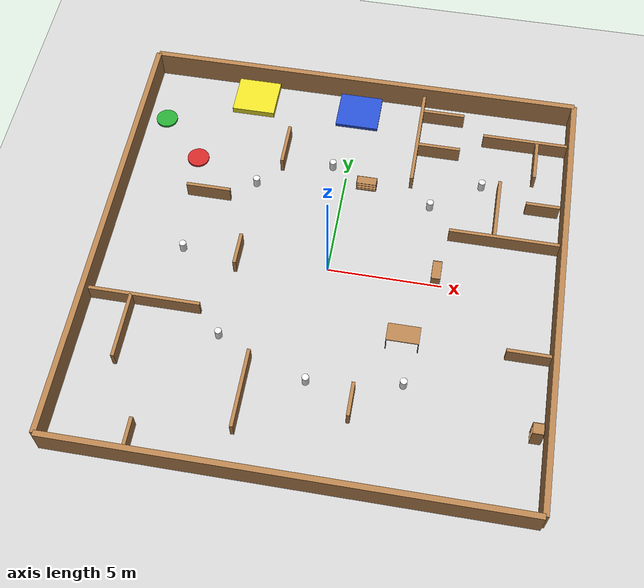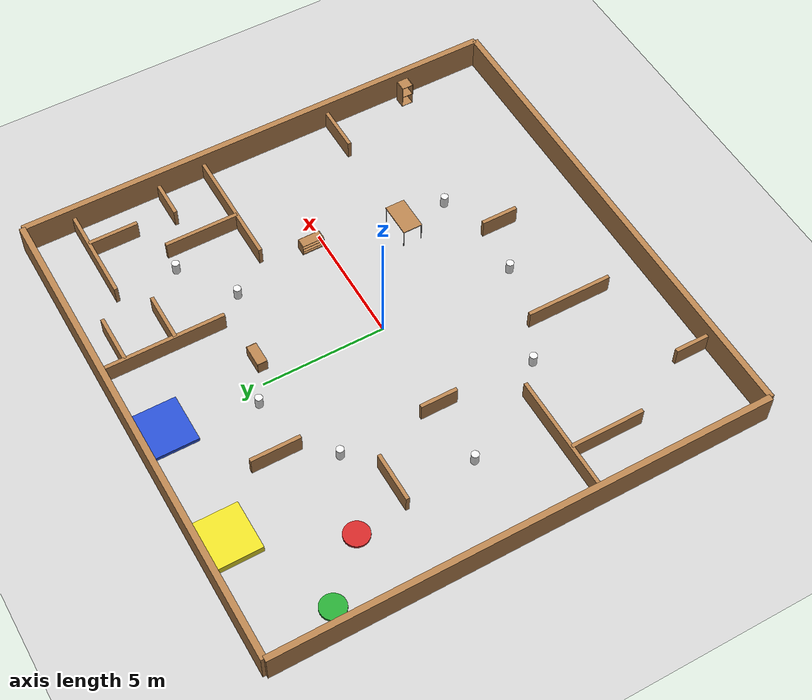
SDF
<sdf version="1.7">
 <world name="default">
  <plugin name="gazebo_ros_state" filename="libgazebo_ros_state.so">
   <ros><namespace>/test</namespace><argument>model_states:=model_states_demo</argument></ros>
   <update_rate>1.0</update_rate>
  </plugin>
  <model name="ground_plane">
   <static>1</static>
   <link name="link">
    <collision name="collision">
     <geometry><plane><normal>0 0 1</normal><size>100 100</size></plane></geometry>
     <surface>
      <contact><collide_bitmask>65535</collide_bitmask></contact>
      <friction><ode><mu>100</mu><mu2>50</mu2></ode></friction>
     </surface>
    </collision>
    <visual name="visual">
     <cast_shadows>0</cast_shadows>
     <geometry><plane><normal>0 0 1</normal><size>100 100</size></plane></geometry>
     <material>
      <script><uri>file://media/materials/scripts/gazebo.material</uri><name>Gazebo/Grey</name></script>
     </material>
    </visual>
   </link>
  </model>
  <light name="sun" type="directional">
   <pose>0 0 10 0 -0 0</pose>
   <diffuse>0.8 0.8 0.8 1</diffuse>
   <specular>0.2 0.2 0.2 1</specular>
   <attenuation>
    <range>1000</range>
    <constant>0.9</constant>
    <linear>0.01</linear>
    <quadratic>0.001</quadratic>
   </attenuation>
   <direction>-0.5 0.1 -0.9</direction>
   <spot><inner_angle>0</inner_angle><outer_angle>0</outer_angle><falloff>0</falloff></spot>
  </light>
  <scene><shadows>0</shadows><ambient>0.4 0.4 0.4 1</ambient><background>0.7 0.7 0.7 1</background></scene>
  <physics type="ode">
   <real_time_update_rate>1000</real_time_update_rate>
   <max_step_size>0.001</max_step_size>
   <real_time_factor>1</real_time_factor>
   <ode>
    <solver>
     <type>quick</type>
     <iters>150</iters>
     <precon_iters>0</precon_iters>
     <sor>1.4</sor>
     <use_dynamic_moi_rescaling>1</use_dynamic_moi_rescaling>
    </solver>
    <constraints>
     <cfm>1e-05</cfm>
     <erp>0.2</erp>
     <contact_max_correcting_vel>2000</contact_max_correcting_vel>
     <contact_surface_layer>0.01</contact_surface_layer>
    </constraints>
   </ode>
  </physics>
  <model name="room_square">
   <link name="Wall_1">
    <collision name="Wall_1_Collision">
     <geometry><box><size>20 0.25 2</size></box></geometry>
     <pose>0 0 0.25 0 -0 0</pose>
    </collision>
    <visual name="Wall_1_Visual">
     <pose>0 0 0.25 0 -0 0</pose>
     <geometry><box><size>20 0.25 2</size></box></geometry>
     <material>
      <script><uri>file://media/materials/scripts/gazebo.material</uri><name>Gazebo/Wood</name></script>
      <ambient>1 1 1 1</ambient>
     </material>
    </visual>
    <pose>-10 0 0 0 -0 1.5708</pose>
   </link>
   <link name="Wall_2">
    <collision name="Wall_2_Collision">
     <geometry><box><size>20 0.25 2</size></box></geometry>
     <pose>0 0 0.25 0 -0 0</pose>
    </collision>
    <visual name="Wall_2_Visual">
     <pose>0 0 0.25 0 -0 0</pose>
     <geometry><box><size>20 0.25 2</size></box></geometry>
     <material>
      <script><uri>file://media/materials/scripts/gazebo.material</uri><name>Gazebo/Wood</name></script>
      <ambient>1 1 1 1</ambient>
     </material>
    </visual>
    <pose>0 10 0 0 -0 0</pose>
   </link>
   <link name="Wall_3">
    <collision name="Wall_3_Collision">
     <geometry><box><size>20 0.25 2</size></box></geometry>
     <pose>0 0 0.25 0 -0 0</pose>
    </collision>
    <visual name="Wall_3_Visual">
     <pose>0 0 0.25 0 -0 0</pose>
     <geometry><box><size>20 0.25 2</size></box></geometry>
     <material>
      <script><uri>file://media/materials/scripts/gazebo.material</uri><name>Gazebo/Wood</name></script>
      <ambient>1 1 1 1</ambient>
     </material>
    </visual>
    <pose>10 0 0 0 0 -1.5708</pose>
   </link>
   <link name="Wall_4">
    <collision name="Wall_4_Collision">
     <geometry><box><size>20 0.25 2</size></box></geometry>
     <pose>0 0 0.25 0 -0 0</pose>
    </collision>
    <visual name="Wall_4_Visual">
     <pose>0 0 0.25 0 -0 0</pose>
     <geometry><box><size>20 0.25 2</size></box></geometry>
     <material>
      <script><uri>file://media/materials/scripts/gazebo.material</uri><name>Gazebo/Wood</name></script>
      <ambient>1 1 1 1</ambient>
     </material>
    </visual>
    <pose>0 -10 0 0 -0 3.14159</pose>
   </link>
   <static>1</static>
  </model>
  <model name="inner_walls">
   <link name="inner_wall_1_1">
    <collision name="inner_wall_1_1_collision">
     <geometry><box><size>5 0.15 1</size></box></geometry>
     <pose>0 0 0.25 0 -0 0</pose>
    </collision>
    <visual name="inner_wall_1_1_visual">
     <pose>0 0 0.25 0 -0 0</pose>
     <geometry><box><size>5 0.15 1</size></box></geometry>
     <material>
      <script><uri>file://media/materials/scripts/gazebo.material</uri><name>Gazebo/Wood</name></script>
      <ambient>1 1 1 1</ambient>
     </material>
    </visual>
    <pose>-7.5 -3 0 0 -0 0</pose>
   </link>
   <link name="inner_wall_right_down_h">
    <collision name="inner_wall_right_down_h_collision">
     <geometry><box><size>3 0.15 1</size></box></geometry>
     <pose>0 0 0.25 0 -0 0</pose>
    </collision>
    <visual name="inner_wall_right_down_h_visual">
     <pose>0 0 0.25 0 -0 0</pose>
     <geometry><box><size>3 0.15 1</size></box></geometry>
     <material>
      <script><uri>file://media/materials/scripts/gazebo.material</uri><name>Gazebo/Wood</name></script>
      <ambient>1 1 1 1</ambient>
     </material>
    </visual>
    <pose>-8 -4.5 0 0 0 -1.5708</pose>
   </link>
   <link name="inner_wall_1_2">
    <collision name="inner_wall_1_2_collision">
     <geometry><box><size>3 0.15 1</size></box></geometry>
     <pose>0 0 0.25 0 -0 0</pose>
    </collision>
    <visual name="inner_wall_1_2_visual">
     <pose>0 0 0.25 0 -0 0</pose>
     <geometry><box><size>3.5 0.15 1</size></box></geometry>
     <material>
      <script><uri>file://media/materials/scripts/gazebo.material</uri><name>Gazebo/Wood</name></script>
      <ambient>1 1 1 1</ambient>
     </material>
    </visual>
    <pose>-2.5 -6.5 0 0 0 -1.5708</pose>
   </link>
   <link name="inner_wall_3">
    <collision name="inner_wall_3_collision">
     <geometry><box><size>1.5 0.15 1</size></box></geometry>
     <pose>0 0 0.25 0 -0 0</pose>
    </collision>
    <visual name="inner_wall_3_visual">
     <pose>0 0 0.25 0 -0 0</pose>
     <geometry><box><size>1.5 0.15 1</size></box></geometry>
     <material>
      <script><uri>file://media/materials/scripts/gazebo.material</uri><name>Gazebo/Wood</name></script>
      <ambient>1 1 1 1</ambient>
     </material>
    </visual>
    <pose>2 -6.25 0 0 0 -1.5708</pose>
   </link>
   <link name="inner_wall_9">
    <collision name="inner_wall_9_collision">
     <geometry><box><size>2 0.15 1</size></box></geometry>
     <pose>0 0 0.25 0 -0 0</pose>
    </collision>
    <visual name="inner_wall_9_visual">
     <pose>0 0 0.25 0 -0 0</pose>
     <geometry><box><size>2 0.15 1</size></box></geometry>
     <material>
      <script><uri>file://media/materials/scripts/gazebo.material</uri><name>Gazebo/Wood</name></script>
      <ambient>1 1 1 1</ambient>
     </material>
    </visual>
    <pose>9 -3 0 0 -0 0</pose>
   </link>
   <link name="inner_wall_4">
    <collision name="inner_wall_4_collision">
     <geometry><box><size>5 0.15 1</size></box></geometry>
     <pose>0 0 0.25 0 -0 0</pose>
    </collision>
    <visual name="inner_wall_4_visual">
     <pose>0 0 0.25 0 -0 0</pose>
     <geometry><box><size>5 0.15 1</size></box></geometry>
     <material>
      <script><uri>file://media/materials/scripts/gazebo.material</uri><name>Gazebo/Wood</name></script>
      <ambient>1 1 1 1</ambient>
     </material>
    </visual>
    <pose>3 7.5 0 0 0 -1.5708</pose>
   </link>
   <link name="inner_wall_5">
    <collision name="inner_wall_5_collision">
     <geometry><box><size>5 0.15 1</size></box></geometry>
     <pose>0 0 0.25 0 -0 0</pose>
    </collision>
    <visual name="inner_wall_5_visual">
     <pose>0 0 0.25 0 -0 0</pose>
     <geometry><box><size>5 0.15 1</size></box></geometry>
     <material>
      <script><uri>file://media/materials/scripts/gazebo.material</uri><name>Gazebo/Wood</name></script>
      <ambient>1 1 1 1</ambient>
     </material>
    </visual>
    <pose>7.5 2.5 0 0 -0 0</pose>
   </link>
   <link name="inner_wall_10">
    <collision name="inner_wall_10_collision">
     <geometry><box><size>1.5 0.15 1</size></box></geometry>
     <pose>0 0 0.25 0 -0 0</pose>
    </collision>
    <visual name="inner_wall_10_visual">
     <pose>0 0 0.25 0 -0 0</pose>
     <geometry><box><size>1.5 0.15 1</size></box></geometry>
     <material>
      <script><uri>file://media/materials/scripts/gazebo.material</uri><name>Gazebo/Wood</name></script>
      <ambient>1 1 1 1</ambient>
     </material>
    </visual>
    <pose>-6.5 -9.25 0 0 0 -1.5708</pose>
   </link>
   <link name="inner_wall_6">
    <collision name="inner_wall_6_collision">
     <geometry><box><size>1 0.15 1</size></box></geometry>
     <pose>0 0 0.25 0 -0 0</pose>
    </collision>
    <visual name="inner_wall_6_visual">
     <pose>0 0 0.25 0 -0 0</pose>
     <geometry><box><size>2 0.15 1</size></box></geometry>
     <material>
      <script><uri>file://media/materials/scripts/gazebo.material</uri><name>Gazebo/Wood</name></script>
      <ambient>1 1 1 1</ambient>
     </material>
    </visual>
    <pose>-6 3 0 0 -0 0</pose>
   </link>
   <link name="inner_wall_7">
    <collision name="inner_wall_7_collision">
     <geometry><box><size>2 0.15 1</size></box></geometry>
     <pose>0 0 0.25 0 -0 0</pose>
    </collision>
    <visual name="inner_wall_7_visual">
     <pose>0 0 0.25 0 -0 0</pose>
     <geometry><box><size>2 0.15 1</size></box></geometry>
     <material>
      <script><uri>file://media/materials/scripts/gazebo.material</uri><name>Gazebo/Wood</name></script>
      <ambient>1 1 1 1</ambient>
     </material>
    </visual>
    <pose>-3 6 0 0 0 -1.5708</pose>
   </link>
   <link name="inner_wall_8">
    <collision name="inner_wall_8_collision">
     <geometry><box><size>1.5 0.15 1</size></box></geometry>
     <pose>0 0 0.25 0 -0 0</pose>
    </collision>
    <visual name="inner_wall_8_visual">
     <pose>0 0 0.25 0 -0 0</pose>
     <geometry><box><size>1.5 0.15 1</size></box></geometry>
     <material>
      <script><uri>file://media/materials/scripts/gazebo.material</uri><name>Gazebo/Wood</name></script>
      <ambient>1 1 1 1</ambient>
     </material>
    </visual>
    <pose>-4 0 0 0 0 -1.5708</pose>
   </link>
   <link name="inner_wall_11">
    <collision name="inner_wall_11_collision">
     <geometry><box><size>3 0.15 1</size></box></geometry>
     <pose>0 0 0.25 0 -0 0</pose>
    </collision>
    <visual name="inner_wall_11_visual">
     <pose>0 0 0.25 0 -0 0</pose>
     <geometry><box><size>3 0.15 1</size></box></geometry>
     <material>
      <script><uri>file://media/materials/scripts/gazebo.material</uri><name>Gazebo/Wood</name></script>
      <ambient>1 1 1 1</ambient>
     </material>
    </visual>
    <pose>7 4 0 0 0 -1.5708</pose>
   </link>
   <link name="inner_wall_12">
    <collision name="inner_wall_12_collision">
     <geometry><box><size>4 0.15 1</size></box></geometry>
     <pose>0 0 0.25 0 -0 0</pose>
    </collision>
    <visual name="inner_wall_12_visual">
     <pose>0 0 0.25 0 -0 0</pose>
     <geometry><box><size>4 0.15 1</size></box></geometry>
     <material>
      <script><uri>file://media/materials/scripts/gazebo.material</uri><name>Gazebo/Wood</name></script>
      <ambient>1 1 1 1</ambient>
     </material>
    </visual>
    <pose>8 8 0 0 -0 0</pose>
   </link>
   <link name="inner_wall_13">
    <collision name="inner_wall_13_collision">
     <geometry><box><size>2 0.15 1</size></box></geometry>
     <pose>0 0 0.25 0 -0 0</pose>
    </collision>
    <visual name="inner_wall_13_visual">
     <pose>0 0 0.25 0 -0 0</pose>
     <geometry><box><size>2 0.15 1</size></box></geometry>
     <material>
      <script><uri>file://media/materials/scripts/gazebo.material</uri><name>Gazebo/Wood</name></script>
      <ambient>1 1 1 1</ambient>
     </material>
    </visual>
    <pose>4 9 0 0 -0 0</pose>
   </link>
   <link name="inner_wall_14">
    <collision name="inner_wall_14_collision">
     <geometry><box><size>1.5 0.15 1</size></box></geometry>
     <pose>0 0 0.25 0 -0 0</pose>
    </collision>
    <visual name="inner_wall_14_visual">
     <pose>0 0 0.25 0 -0 0</pose>
     <geometry><box><size>1.5 0.15 1</size></box></geometry>
     <material>
      <script><uri>file://media/materials/scripts/gazebo.material</uri><name>Gazebo/Wood</name></script>
      <ambient>1 1 1 1</ambient>
     </material>
    </visual>
    <pose>9 4.5 0 0 -0 0</pose>
   </link>
   <link name="inner_wall_15">
    <collision name="inner_wall_15_collision">
     <geometry><box><size>2 0.15 1</size></box></geometry>
     <pose>0 0 0.25 0 -0 0</pose>
    </collision>
    <visual name="inner_wall_15_visual">
     <pose>0 0 0.25 0 -0 0</pose>
     <geometry><box><size>2 0.15 1</size></box></geometry>
     <material>
      <script><uri>file://media/materials/scripts/gazebo.material</uri><name>Gazebo/Wood</name></script>
      <ambient>1 1 1 1</ambient>
     </material>
    </visual>
    <pose>8.5 7 0 0 0 -1.5708</pose>
   </link>
   <link name="inner_wall_16">
    <collision name="inner_wall_16_collision">
     <geometry><box><size>2 0.15 1</size></box></geometry>
     <pose>0 0 0.25 0 -0 0</pose>
    </collision>
    <visual name="inner_wall_16_visual">
     <pose>0 0 0.25 0 -0 0</pose>
     <geometry><box><size>2 0.15 1</size></box></geometry>
     <material>
      <script><uri>file://media/materials/scripts/gazebo.material</uri><name>Gazebo/Wood</name></script>
      <ambient>1 1 1 1</ambient>
     </material>
    </visual>
    <pose>4 7 0 0 -0 0</pose>
   </link>
   <static>1</static>
  </model>
  <model name="obstacles">
   <link name="obstacle_1">
    <collision name="obstacle_1_collision">
     <pose>0 0 0.25 0 -0 0</pose>
     <geometry><cylinder><radius>0.15</radius><length>0.5</length></cylinder></geometry>
    </collision>
    <visual name="obstacle_1_visual">
     <pose>0 0 0.25 0 -0 0</pose>
     <geometry><cylinder><radius>0.15</radius><length>0.5</length></cylinder></geometry>
     <material>
      <script><uri>file://media/materials/scripts/gazebo.material</uri><name>Gazebo/White</name></script>
     </material>
    </visual>
    <pose>-4 -4 0 0 -0 0</pose>
   </link>
   <link name="obstacle_2">
    <collision name="obstacle_2_collision">
     <pose>0 0 0.25 0 -0 0</pose>
     <geometry><cylinder><radius>0.15</radius><length>0.5</length></cylinder></geometry>
    </collision>
    <visual name="obstacle_2_visual">
     <pose>0 0 0.25 0 -0 0</pose>
     <geometry><cylinder><radius>0.15</radius><length>0.5</length></cylinder></geometry>
     <material>
      <script><uri>file://media/materials/scripts/gazebo.material</uri><name>Gazebo/White</name></script>
     </material>
    </visual>
    <pose>-4 4 0 0 -0 0</pose>
   </link>
   <link name="obstacle_3">
    <collision name="obstacle_3_collision">
     <pose>0 0 0.25 0 -0 0</pose>
     <geometry><cylinder><radius>0.15</radius><length>0.5</length></cylinder></geometry>
    </collision>
    <visual name="obstacle_3_visual">
     <pose>0 0 0.25 0 -0 0</pose>
     <geometry><cylinder><radius>0.15</radius><length>0.5</length></cylinder></geometry>
     <material>
      <script><uri>file://media/materials/scripts/gazebo.material</uri><name>Gazebo/White</name></script>
     </material>
    </visual>
    <pose>4 -5 0 0 -0 0</pose>
   </link>
   <link name="obstacle_4">
    <collision name="obstacle_4_collision">
     <pose>0 0 0.25 0 -0 0</pose>
     <geometry><cylinder><radius>0.15</radius><length>0.5</length></cylinder></geometry>
    </collision>
    <visual name="obstacle_4_visual">
     <pose>0 0 0.25 0 -0 0</pose>
     <geometry><cylinder><radius>0.15</radius><length>0.5</length></cylinder></geometry>
     <material>
      <script><uri>file://media/materials/scripts/gazebo.material</uri><name>Gazebo/White</name></script>
     </material>
    </visual>
    <pose>4 4 0 0 -0 0</pose>
   </link>
   <link name="obstacle_5">
    <collision name="obstacle_5_collision">
     <pose>0 0 0.25 0 -0 0</pose>
     <geometry><cylinder><radius>0.15</radius><length>0.5</length></cylinder></geometry>
    </collision>
    <visual name="obstacle_5_visual">
     <pose>0 0 0.25 0 -0 0</pose>
     <geometry><cylinder><radius>0.15</radius><length>0.5</length></cylinder></geometry>
     <material>
      <script><uri>file://media/materials/scripts/gazebo.material</uri><name>Gazebo/White</name></script>
     </material>
    </visual>
    <pose>-6.5 0 0 0 -0 0</pose>
   </link>
   <link name="obstacle_6">
    <collision name="obstacle_6_collision">
     <pose>0 0 0.25 0 -0 0</pose>
     <geometry><cylinder><radius>0.15</radius><length>0.5</length></cylinder></geometry>
    </collision>
    <visual name="obstacle_6_visual">
     <pose>0 0 0.25 0 -0 0</pose>
     <geometry><cylinder><radius>0.15</radius><length>0.5</length></cylinder></geometry>
     <material>
      <script><uri>file://media/materials/scripts/gazebo.material</uri><name>Gazebo/White</name></script>
     </material>
    </visual>
    <pose>0 -5.5 0 0 -0 0</pose>
   </link>
   <link name="obstacle_7">
    <collision name="obstacle_7_collision">
     <pose>0 0 0.25 0 -0 0</pose>
     <geometry><cylinder><radius>0.15</radius><length>0.5</length></cylinder></geometry>
    </collision>
    <visual name="obstacle_7_visual">
     <pose>0 0 0.25 0 -0 0</pose>
     <geometry><cylinder><radius>0.15</radius><length>0.5</length></cylinder></geometry>
     <material>
      <script><uri>file://media/materials/scripts/gazebo.material</uri><name>Gazebo/White</name></script>
     </material>
    </visual>
    <pose>6.2 5.5 0 0 -0 0</pose>
   </link>
   <link name="obstacle_8">
    <collision name="obstacle_8_collision">
     <pose>0 0 0.25 0 -0 0</pose>
     <geometry><cylinder><radius>0.15</radius><length>0.5</length></cylinder></geometry>
    </collision>
    <visual name="obstacle_8_visual">
     <pose>0 0 0.25 0 -0 0</pose>
     <geometry><cylinder><radius>0.15</radius><length>0.5</length></cylinder></geometry>
     <material>
      <script><uri>file://media/materials/scripts/gazebo.material</uri><name>Gazebo/White</name></script>
     </material>
    </visual>
    <pose>-0.7 5.5 0 0 -0 0</pose>
   </link>
   <static>1</static>
  </model>
  <model name="random_obstacles">
   <link name="rnd_obstacle_1">
    <collision name="rnd_obstacle_1_collision">
     <pose>0 0 0.05 0 -0 0</pose>
     <geometry><cylinder><radius>0.5</radius><length>0.1</length></cylinder></geometry>
    </collision>
    <visual name="rnd_obstacle_1_visual">
     <pose>0 0 0.05 0 -0 0</pose>
     <geometry><cylinder><radius>0.5</radius><length>0.1</length></cylinder></geometry>
     <material>
      <script><uri>file://media/materials/scripts/gazebo.material</uri><name>Gazebo/RedBright</name></script>
     </material>
    </visual>
    <pose>-7 5 0 0 -0 0</pose>
   </link>
   <link name="rnd_obstacle_2">
    <collision name="rnd_obstacle_2_collision">
     <pose>0 0 0.09 0 -0 0</pose>
     <geometry><cylinder><radius>0.4</radius><length>0.18</length></cylinder></geometry>
    </collision>
    <visual name="rnd_obstacle_2_visual">
     <pose>0 0 0.09 0 -0 0</pose>
     <geometry><cylinder><radius>0.5</radius><length>0.1</length></cylinder></geometry>
     <material>
      <script><uri>file://media/materials/scripts/gazebo.material</uri><name>Gazebo/Green</name></script>
     </material>
    </visual>
    <pose>-9 7 0 0 -0 0</pose>
   </link>
   <link name="rnd_obstacle_3">
    <collision name="rnd_obstacle_3_collision">
     <geometry><box><size>2 2 0.3</size></box></geometry>
     <pose>0 0 0.15 0 -0 0</pose>
    </collision>
    <visual name="rnd_obstacle_3_visual">
     <pose>0 0 0.15 0 -0 0</pose>
     <geometry><box><size>2 2 0.3</size></box></geometry>
     <material>
      <script><uri>file://media/materials/scripts/gazebo.material</uri><name>Gazebo/Yellow</name></script>
      <ambient>1 1 1 1</ambient>
     </material>
    </visual>
    <pose>-5 9 0 0 -0 0</pose>
   </link>
   <link name="rnd_obstacle_4">
    <collision name="rnd_obstacle_4_collision">
     <geometry><box><size>2 2 0.16</size></box></geometry>
     <pose>0 0 0.08 0 -0 0</pose>
    </collision>
    <visual name="rnd_obstacle_4_visual">
     <pose>0 0 0.08 0 -0 0</pose>
     <geometry><box><size>2 2 0.16</size></box></geometry>
     <material>
      <script><uri>file://media/materials/scripts/gazebo.material</uri><name>Gazebo/Blue</name></script>
      <ambient>1 1 1 1</ambient>
     </material>
    </visual>
    <pose>0 9 0 0 -0 0</pose>
   </link>
   <static>1</static>
  </model>
  <model name="table">
   <static>0</static>
   <link name="link">
    <collision name="surface">
     <pose>0 0 0.8 0 -0 0</pose>
     <geometry><box><size>1.5 0.8 0.03</size></box></geometry>
     <surface><friction><ode><mu>0.6</mu><mu2>0.6</mu2></ode></friction></surface>
    </collision>
    <visual name="visual1">
     <pose>0 0 0.8 0 -0 0</pose>
     <geometry><box><size>1.4 0.8 0.04</size></box></geometry>
     <material>
      <script><uri>file://media/materials/scripts/gazebo.material</uri><name>Gazebo/Wood</name></script>
     </material>
    </visual>
    <collision name="front_left_leg_collision">
     <pose>0.68 0.38 0.4 0 -0 0</pose>
     <geometry><cylinder><radius>0.02</radius><length>0.8</length></cylinder></geometry>
    </collision>
    <visual name="front_left_leg_visual">
     <pose>0.68 0.38 0.4 0 -0 0</pose>
     <geometry><cylinder><radius>0.02</radius><length>0.8</length></cylinder></geometry>
     <material>
      <script><uri>file://media/materials/scripts/gazebo.material</uri><name>Gazebo/Grey</name></script>
     </material>
    </visual>
    <collision name="front_right_leg_collision">
     <pose>0.68 -0.38 0.4 0 -0 0</pose>
     <geometry><cylinder><radius>0.02</radius><length>0.8</length></cylinder></geometry>
    </collision>
    <visual name="front_right_leg_visual">
     <pose>0.68 -0.38 0.4 0 -0 0</pose>
     <geometry><cylinder><radius>0.02</radius><length>0.8</length></cylinder></geometry>
     <material>
      <script><uri>file://media/materials/scripts/gazebo.material</uri><name>Gazebo/Grey</name></script>
     </material>
    </visual>
    <collision name="back_right_leg_collision">
     <pose>-0.68 -0.38 0.4 0 -0 0</pose>
     <geometry><cylinder><radius>0.02</radius><length>0.8</length></cylinder></geometry>
    </collision>
    <visual name="back_right_leg_visual">
     <pose>-0.68 -0.38 0.4 0 -0 0</pose>
     <geometry><cylinder><radius>0.02</radius><length>0.8</length></cylinder></geometry>
     <material>
      <script><uri>file://media/materials/scripts/gazebo.material</uri><name>Gazebo/Grey</name></script>
     </material>
    </visual>
    <collision name="back_left_leg_collision">
     <pose>-0.68 0.38 0.4 0 -0 0</pose>
     <geometry><cylinder><radius>0.02</radius><length>0.8</length></cylinder></geometry>
    </collision>
    <visual name="back_left_leg_visual">
     <pose>-0.68 0.38 0.4 0 -0 0</pose>
     <geometry><cylinder><radius>0.02</radius><length>0.8</length></cylinder></geometry>
     <material>
      <script><uri>file://media/materials/scripts/gazebo.material</uri><name>Gazebo/Grey</name></script>
     </material>
    </visual>
    <inertial>
     <inertia><ixx>1</ixx><ixy>0</ixy><ixz>0</ixz><iyy>1</iyy><iyz>0</iyz><izz>1</izz></inertia>
     <mass>1</mass>
    </inertial>
   </link>
   <pose>3.7 -3 0 0 -0 0</pose>
  </model>
  <model name="bookshelf_1">
   <static>1</static>
   <link name="link_book">
    <inertial><mass>1</mass></inertial>
    <collision name="back">
     <pose>0 0.005 0.25 0 -0 0</pose>
     <geometry><box><size>0.9 0.01 0.5</size></box></geometry>
    </collision>
    <visual name="visual1">
     <pose>0 0.005 0.25 0 -0 0</pose>
     <geometry><box><size>0.9 0.01 0.5</size></box></geometry>
     <material>
      <script><uri>file://media/materials/scripts/gazebo.material</uri><name>Gazebo/Wood</name></script>
     </material>
    </visual>
    <collision name="left_side">
     <pose>0.45 -0.195 0.25 0 -0 0</pose>
     <geometry><box><size>0.02 0.4 0.5</size></box></geometry>
    </collision>
    <visual name="visual2">
     <pose>0.45 -0.195 0.25 0 -0 0</pose>
     <geometry><box><size>0.02 0.4 0.5</size></box></geometry>
     <material>
      <script><uri>file://media/materials/scripts/gazebo.material</uri><name>Gazebo/Wood</name></script>
     </material>
    </visual>
    <collision name="right_side">
     <pose>-0.45 -0.195 0.25 0 -0 0</pose>
     <geometry><box><size>0.02 0.4 0.5</size></box></geometry>
    </collision>
    <visual name="visual3">
     <pose>-0.45 -0.195 0.25 0 -0 0</pose>
     <geometry><box><size>0.02 0.4 0.5</size></box></geometry>
     <material>
      <script><uri>file://media/materials/scripts/gazebo.material</uri><name>Gazebo/Wood</name></script>
     </material>
    </visual>
    <collision name="bottom">
     <pose>0 -0.195 0.03 0 -0 0</pose>
     <geometry><box><size>0.88 0.4 0.06</size></box></geometry>
    </collision>
    <visual name="visual4">
     <pose>0 -0.195 0.03 0 -0 0</pose>
     <geometry><box><size>0.88 0.4 0.06</size></box></geometry>
     <material>
      <script><uri>file://media/materials/scripts/gazebo.material</uri><name>Gazebo/Wood</name></script>
     </material>
    </visual>
    <collision name="top">
     <pose>0 -0.195 0.49 0 -0 0</pose>
     <geometry><box><size>0.88 0.4 0.02</size></box></geometry>
    </collision>
    <visual name="visual5">
     <pose>0 -0.195 0.49 0 -0 0</pose>
     <geometry><box><size>0.88 0.4 0.02</size></box></geometry>
     <material>
      <script><uri>file://media/materials/scripts/gazebo.material</uri><name>Gazebo/Wood</name></script>
     </material>
    </visual>
    <collision name="low_shelf">
     <pose>0 -0.195 0.167 0 -0 0</pose>
     <geometry><box><size>0.88 0.4 0.02</size></box></geometry>
    </collision>
    <visual name="visual6">
     <pose>0 -0.195 0.167 0 -0 0</pose>
     <geometry><box><size>0.88 0.4 0.02</size></box></geometry>
     <material>
      <script><uri>file://media/materials/scripts/gazebo.material</uri><name>Gazebo/Wood</name></script>
     </material>
    </visual>
    <collision name="high_shelf">
     <pose>0 -0.195 0.333 0 -0 0</pose>
     <geometry><box><size>0.88 0.4 0.02</size></box></geometry>
    </collision>
    <visual name="visual7">
     <pose>0 -0.195 0.333 0 -0 0</pose>
     <geometry><box><size>0.88 0.4 0.02</size></box></geometry>
     <material>
      <script><uri>file://media/materials/scripts/gazebo.material</uri><name>Gazebo/Wood</name></script>
     </material>
    </visual>
   </link>
   <pose>1 4.9 0 0 -0 0</pose>
  </model>
  <model name="bookshelf_2">
   <static>1</static>
   <link name="link_book2">
    <inertial><mass>1</mass></inertial>
    <collision name="back_book2">
     <pose>0 0.005 0.25 0 -0 0</pose>
     <geometry><box><size>0.9 0.01 0.5</size></box></geometry>
    </collision>
    <visual name="visual1_book2">
     <pose>0 0.005 0.25 0 -0 0</pose>
     <geometry><box><size>0.9 0.01 0.5</size></box></geometry>
     <material>
      <script><uri>file://media/materials/scripts/gazebo.material</uri><name>Gazebo/Wood</name></script>
     </material>
    </visual>
    <collision name="left_side_book2">
     <pose>0.45 -0.195 0.25 0 -0 0</pose>
     <geometry><box><size>0.02 0.4 0.5</size></box></geometry>
    </collision>
    <visual name="visual2_book2">
     <pose>0.45 -0.195 0.25 0 -0 0</pose>
     <geometry><box><size>0.02 0.4 0.5</size></box></geometry>
     <material>
      <script><uri>file://media/materials/scripts/gazebo.material</uri><name>Gazebo/Wood</name></script>
     </material>
    </visual>
    <collision name="right_side_book2">
     <pose>-0.45 -0.195 0.25 0 -0 0</pose>
     <geometry><box><size>0.02 0.4 0.5</size></box></geometry>
    </collision>
    <visual name="visual3_book2">
     <pose>-0.45 -0.195 0.25 0 -0 0</pose>
     <geometry><box><size>0.02 0.4 0.5</size></box></geometry>
     <material>
      <script><uri>file://media/materials/scripts/gazebo.material</uri><name>Gazebo/Wood</name></script>
     </material>
    </visual>
    <collision name="bottom_book2">
     <pose>0 -0.195 0.03 0 -0 0</pose>
     <geometry><box><size>0.88 0.4 0.06</size></box></geometry>
    </collision>
    <visual name="visual4_book2">
     <pose>0 -0.195 0.03 0 -0 0</pose>
     <geometry><box><size>0.88 0.4 0.06</size></box></geometry>
     <material>
      <script><uri>file://media/materials/scripts/gazebo.material</uri><name>Gazebo/Wood</name></script>
     </material>
    </visual>
    <collision name="top_book2">
     <pose>0 -0.195 0.49 0 -0 0</pose>
     <geometry><box><size>0.88 0.4 0.02</size></box></geometry>
    </collision>
    <visual name="visual5_book2">
     <pose>0 -0.195 0.49 0 -0 0</pose>
     <geometry><box><size>0.88 0.4 0.02</size></box></geometry>
     <material>
      <script><uri>file://media/materials/scripts/gazebo.material</uri><name>Gazebo/Wood</name></script>
     </material>
    </visual>
    <collision name="low_shelf_book2">
     <pose>0 -0.195 0.167 0 -0 0</pose>
     <geometry><box><size>0.88 0.4 0.02</size></box></geometry>
    </collision>
    <visual name="visual6_book2">
     <pose>0 -0.195 0.167 0 -0 0</pose>
     <geometry><box><size>0.88 0.4 0.02</size></box></geometry>
     <material>
      <script><uri>file://media/materials/scripts/gazebo.material</uri><name>Gazebo/Wood</name></script>
     </material>
    </visual>
    <collision name="high_shelf_book2">
     <pose>0 -0.195 0.334 0 -0 0</pose>
     <geometry><box><size>0.88 0.4 0.02</size></box></geometry>
    </collision>
    <visual name="visual7_book2">
     <pose>0 -0.195 0.334 0 -0 0</pose>
     <geometry><box><size>0.88 0.4 0.02</size></box></geometry>
     <material>
      <script><uri>file://media/materials/scripts/gazebo.material</uri><name>Gazebo/Wood</name></script>
     </material>
    </visual>
   </link>
   <pose>4.9 0.5 0 0 -0 -1.5708</pose>
  </model>
  <gravity>0 0 -9.8</gravity>
  <magnetic_field>6e-06 2.3e-05 -4.2e-05</magnetic_field>
  <atmosphere type="adiabatic"/>
  <spherical_coordinates>
   <surface_model>EARTH_WGS84</surface_model>
   <latitude_deg>0</latitude_deg>
   <longitude_deg>0</longitude_deg>
   <elevation>0</elevation>
   <heading_deg>0</heading_deg>
  </spherical_coordinates>
  <model name="cabinet">
   <static>1</static>
   <link name="cabinet_bottom_plate">
    <inertial>
     <pose>0 0 -1 0 -0 0</pose>
     <inertia><ixx>2.05</ixx><ixy>0</ixy><ixz>0</ixz><iyy>2.05</iyy><iyz>0</iyz><izz>2.05</izz></inertia>
     <mass>25</mass>
    </inertial>
    <collision name="cabinet_bottom_plate_geom">
     <pose>0 0 0.01 0 -0 0</pose>
     <geometry><box><size>0.45 0.45 0.02</size></box></geometry>
    </collision>
    <visual name="cabinet_bottom_plate_geom_visual">
     <pose>0 0 0.01 0 -0 0</pose>
     <geometry><box><size>0.45 0.45 0.02</size></box></geometry>
     <material>
      <script><uri>file://media/materials/scripts/gazebo.material</uri><name>Gazebo/Wood</name></script>
     </material>
    </visual>
    <collision name="cabinet_bottom_plate_geom_cabinet_back_plate">
     <pose>0.235 0 0.51 0 -0 0</pose>
     <geometry><box><size>0.02 0.45 1.02</size></box></geometry>
    </collision>
    <visual name="cabinet_bottom_plate_geom_cabinet_back_plate_visual">
     <pose>0.235 0 0.51 0 -0 0</pose>
     <geometry><box><size>0.02 0.45 1.02</size></box></geometry>
     <material>
      <script><uri>file://media/materials/scripts/gazebo.material</uri><name>Gazebo/Wood</name></script>
     </material>
    </visual>
    <collision name="cabinet_bottom_plate_geom_cabinet_left_plate">
     <pose>0 0.235 0.51 0 -0 0</pose>
     <geometry><box><size>0.45 0.02 1.02</size></box></geometry>
    </collision>
    <visual name="cabinet_bottom_plate_geom_cabinet_left_plate_visual">
     <pose>0 0.235 0.51 0 -0 0</pose>
     <geometry><box><size>0.45 0.02 1.02</size></box></geometry>
     <material>
      <script><uri>file://media/materials/scripts/gazebo.material</uri><name>Gazebo/Wood</name></script>
     </material>
    </visual>
    <collision name="cabinet_bottom_plate_geom_cabinet_middle_plate">
     <pose>0 0 0.51 0 -0 0</pose>
     <geometry><box><size>0.45 0.45 0.02</size></box></geometry>
    </collision>
    <visual name="cabinet_bottom_plate_geom_cabinet_middle_plate_visual">
     <pose>0 0 0.51 0 -0 0</pose>
     <geometry><box><size>0.45 0.45 0.02</size></box></geometry>
     <material>
      <script><uri>file://media/materials/scripts/gazebo.material</uri><name>Gazebo/Wood</name></script>
     </material>
    </visual>
    <collision name="cabinet_bottom_plate_geom_cabinet_right_plate">
     <pose>0 -0.235 0.51 0 -0 0</pose>
     <geometry><box><size>0.45 0.02 1.02</size></box></geometry>
    </collision>
    <visual name="cabinet_bottom_plate_geom_cabinet_right_plate_visual">
     <pose>0 -0.235 0.51 0 -0 0</pose>
     <geometry><box><size>0.45 0.02 1.02</size></box></geometry>
     <material>
      <script><uri>file://media/materials/scripts/gazebo.material</uri><name>Gazebo/Wood</name></script>
     </material>
    </visual>
    <collision name="cabinet_bottom_plate_geom_cabinet_top_plate">
     <pose>0 0 1.01 0 -0 0</pose>
     <geometry><box><size>0.45 0.45 0.02</size></box></geometry>
    </collision>
    <visual name="cabinet_bottom_plate_geom_cabinet_top_plate_visual">
     <pose>0 0 1.01 0 -0 0</pose>
     <geometry><box><size>0.45 0.45 0.02</size></box></geometry>
     <material>
      <script><uri>file://media/materials/scripts/gazebo.material</uri><name>Gazebo/Wood</name></script>
     </material>
    </visual>
   </link>
   <pose>9.50716 -6.39569 0 0 -0 0</pose>
  </model>
 </world>
</sdf>
